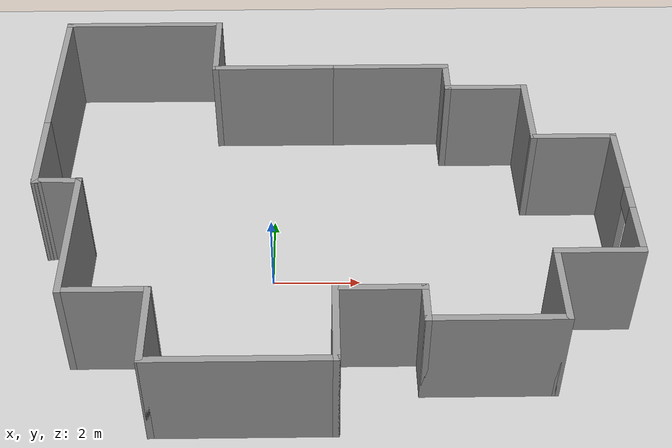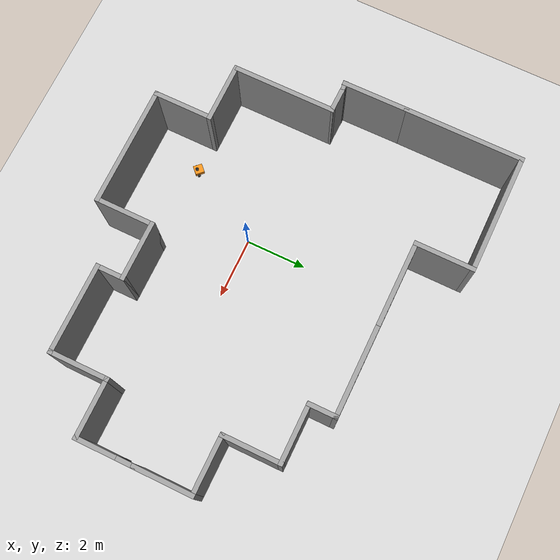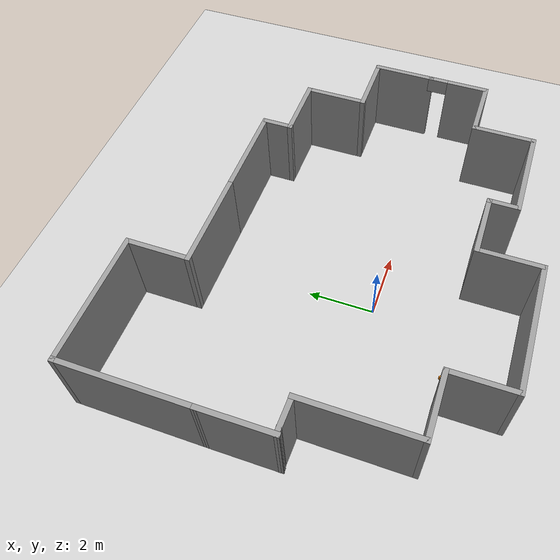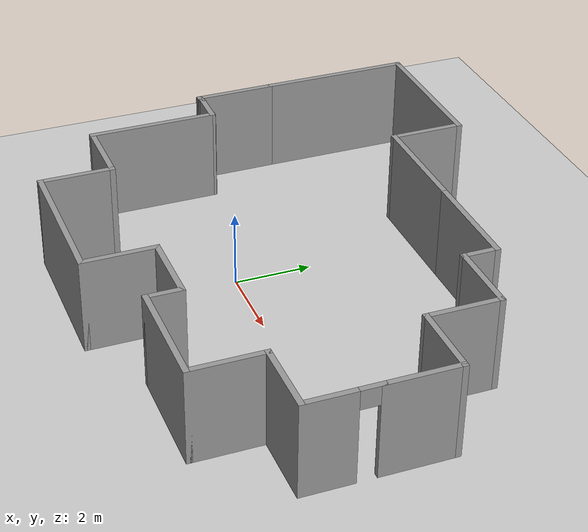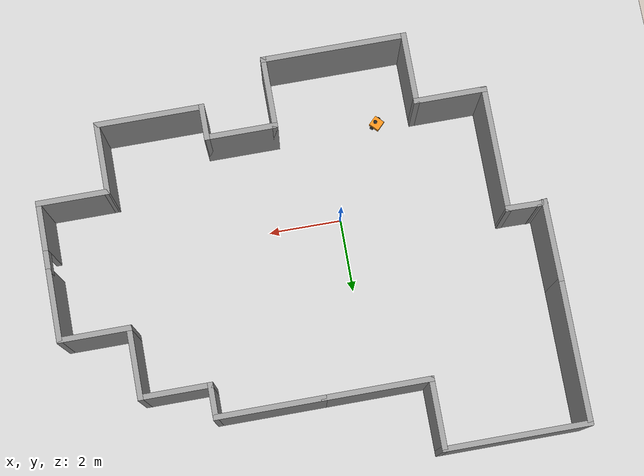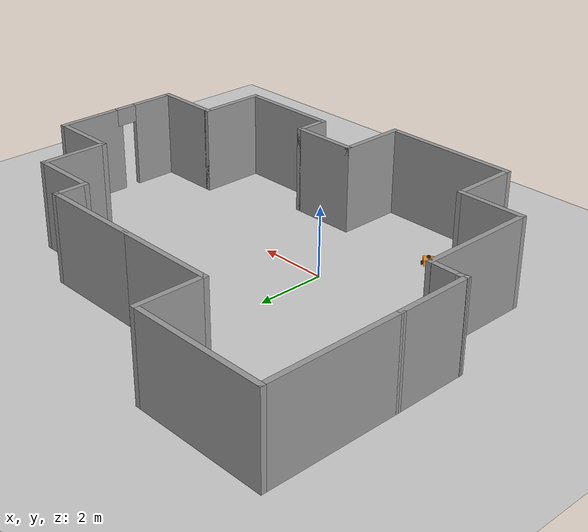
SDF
<sdf version="1.7">
 <world name="default">
  <light name="sun" type="directional">
   <pose>0 0 10 0 -0 0</pose>
   <diffuse>0.8 0.8 0.8 1</diffuse>
   <specular>0.2 0.2 0.2 1</specular>
   <attenuation>
    <range>1000</range>
    <constant>0.9</constant>
    <linear>0.01</linear>
    <quadratic>0.001</quadratic>
   </attenuation>
   <direction>-0.5 0.1 -0.9</direction>
   <spot><inner_angle>0</inner_angle><outer_angle>0</outer_angle><falloff>0</falloff></spot>
  </light>
  <model name="ground_plane">
   <static>1</static>
   <link name="link">
    <collision name="collision">
     <geometry><plane><normal>0 0 1</normal><size>100 100</size></plane></geometry>
     <surface>
      <contact><collide_bitmask>65535</collide_bitmask></contact>
      <friction><ode><mu>100</mu><mu2>50</mu2></ode></friction>
     </surface>
    </collision>
    <visual name="visual">
     <cast_shadows>0</cast_shadows>
     <geometry><plane><normal>0 0 1</normal><size>100 100</size></plane></geometry>
     <material>
      <script><uri>file://media/materials/scripts/gazebo.material</uri><name>Gazebo/Grey</name></script>
     </material>
    </visual>
   </link>
  </model>
  <gravity>0 0 -9.8</gravity>
  <magnetic_field>6e-06 2.3e-05 -4.2e-05</magnetic_field>
  <atmosphere type="adiabatic"/>
  <physics type="ode">
   <max_step_size>0.001</max_step_size>
   <real_time_factor>1</real_time_factor>
   <real_time_update_rate>1000</real_time_update_rate>
  </physics>
  <scene><ambient>0.4 0.4 0.4 1</ambient><background>0.7 0.7 0.7 1</background><shadows>1</shadows></scene>
  <audio><device>default</device></audio>
  <spherical_coordinates>
   <surface_model>EARTH_WGS84</surface_model>
   <latitude_deg>0</latitude_deg>
   <longitude_deg>0</longitude_deg>
   <elevation>0</elevation>
   <heading_deg>0</heading_deg>
  </spherical_coordinates>
  <model name="my_house">
   <pose>1.30477 1.28 0 0 -0 0</pose>
   <link name="Wall_0">
    <collision name="Wall_0_Collision">
     <geometry><box><size>4 0.15 2.5</size></box></geometry>
     <pose>0 0 1.25 0 -0 0</pose>
    </collision>
    <visual name="Wall_0_Visual">
     <pose>0 0 1.25 0 -0 0</pose>
     <geometry><box><size>4 0.15 2.5</size></box></geometry>
     <material>
      <script><uri>file://media/materials/scripts/gazebo.material</uri><name>Gazebo/Grey</name></script>
      <ambient>1 1 1 1</ambient>
     </material>
     <meta><layer>0</layer></meta>
    </visual>
    <pose>-1.84977 -5.55 0 0 -0 0</pose>
   </link>
   <link name="Wall_1">
    <collision name="Wall_1_Collision">
     <geometry><box><size>2 0.15 2.5</size></box></geometry>
     <pose>0 0 1.25 0 -0 0</pose>
    </collision>
    <visual name="Wall_1_Visual">
     <pose>0 0 1.25 0 -0 0</pose>
     <geometry><box><size>2 0.15 2.5</size></box></geometry>
     <material>
      <script><uri>file://media/materials/scripts/gazebo.material</uri><name>Gazebo/Grey</name></script>
      <ambient>1 1 1 1</ambient>
     </material>
     <meta><layer>0</layer></meta>
    </visual>
    <pose>0.075228 -4.625 0 0 -0 1.5708</pose>
   </link>
   <link name="Wall_10">
    <collision name="Wall_10_Collision">
     <geometry><box><size>2 0.15 2.5</size></box></geometry>
     <pose>0 0 1.25 0 -0 0</pose>
    </collision>
    <visual name="Wall_10_Visual">
     <pose>0 0 1.25 0 -0 0</pose>
     <geometry><box><size>2 0.15 2.5</size></box></geometry>
     <material>
      <script><uri>file://media/materials/scripts/gazebo.material</uri><name>Gazebo/Grey</name></script>
      <ambient>1 1 1 1</ambient>
     </material>
     <meta><layer>0</layer></meta>
    </visual>
    <pose>5.70023 1 0 0 -0 3.14159</pose>
   </link>
   <link name="Wall_11">
    <collision name="Wall_11_Collision">
     <geometry><box><size>2 0.15 2.5</size></box></geometry>
     <pose>0 0 1.25 0 -0 0</pose>
    </collision>
    <visual name="Wall_11_Visual">
     <pose>0 0 1.25 0 -0 0</pose>
     <geometry><box><size>2 0.15 2.5</size></box></geometry>
     <material>
      <script><uri>file://media/materials/scripts/gazebo.material</uri><name>Gazebo/Grey</name></script>
      <ambient>1 1 1 1</ambient>
     </material>
     <meta><layer>0</layer></meta>
    </visual>
    <pose>4.77523 1.925 0 0 -0 1.5708</pose>
   </link>
   <link name="Wall_13">
    <collision name="Wall_13_Collision">
     <geometry><box><size>2 0.15 2.5</size></box></geometry>
     <pose>0 0 1.25 0 -0 0</pose>
    </collision>
    <visual name="Wall_13_Visual">
     <pose>0 0 1.25 0 -0 0</pose>
     <geometry><box><size>2 0.15 2.5</size></box></geometry>
     <material>
      <script><uri>file://media/materials/scripts/gazebo.material</uri><name>Gazebo/Grey</name></script>
      <ambient>1 1 1 1</ambient>
     </material>
     <meta><layer>0</layer></meta>
    </visual>
    <pose>3.85023 2.85 0 0 -0 3.14159</pose>
   </link>
   <link name="Wall_14">
    <collision name="Wall_14_Collision">
     <geometry><box><size>1 0.15 2.5</size></box></geometry>
     <pose>0 0 1.25 0 -0 0</pose>
    </collision>
    <visual name="Wall_14_Visual">
     <pose>0 0 1.25 0 -0 0</pose>
     <geometry><box><size>1 0.15 2.5</size></box></geometry>
     <material>
      <script><uri>file://media/materials/scripts/gazebo.material</uri><name>Gazebo/Grey</name></script>
      <ambient>1 1 1 1</ambient>
     </material>
     <meta><layer>0</layer></meta>
    </visual>
    <pose>2.92523 3.275 0 0 -0 1.5708</pose>
   </link>
   <link name="Wall_15">
    <collision name="Wall_15_Collision">
     <geometry><box><size>3 0.15 2.5</size></box></geometry>
     <pose>0 0 1.25 0 -0 0</pose>
    </collision>
    <visual name="Wall_15_Visual">
     <pose>0 0 1.25 0 -0 0</pose>
     <geometry><box><size>3 0.15 2.5</size></box></geometry>
     <material>
      <script><uri>file://media/materials/scripts/gazebo.material</uri><name>Gazebo/Grey</name></script>
      <ambient>1 1 1 1</ambient>
     </material>
     <meta><layer>0</layer></meta>
    </visual>
    <pose>1.50023 3.7 0 0 -0 3.14159</pose>
   </link>
   <link name="Wall_16">
    <collision name="Wall_16_Collision">
     <geometry><box><size>3 0.15 2.5</size></box></geometry>
     <pose>0 0 1.25 0 -0 0</pose>
    </collision>
    <visual name="Wall_16_Visual">
     <pose>0 0 1.25 0 -0 0</pose>
     <geometry><box><size>3 0.15 2.5</size></box></geometry>
     <material>
      <script><uri>file://media/materials/scripts/gazebo.material</uri><name>Gazebo/Grey</name></script>
      <ambient>1 1 1 1</ambient>
     </material>
     <meta><layer>0</layer></meta>
    </visual>
    <pose>-1.34977 3.7 0 0 -0 3.14159</pose>
   </link>
   <link name="Wall_18">
    <collision name="Wall_18_Collision">
     <geometry><box><size>2 0.15 2.5</size></box></geometry>
     <pose>0 0 1.25 0 -0 0</pose>
    </collision>
    <visual name="Wall_18_Visual">
     <pose>0 0 1.25 0 -0 0</pose>
     <geometry><box><size>2 0.15 2.5</size></box></geometry>
     <material>
      <script><uri>file://media/materials/scripts/gazebo.material</uri><name>Gazebo/Grey</name></script>
      <ambient>1 1 1 1</ambient>
     </material>
     <meta><layer>0</layer></meta>
    </visual>
    <pose>-2.77477 4.625 0 0 -0 1.5708</pose>
   </link>
   <link name="Wall_19">
    <collision name="Wall_19_Collision">
     <geometry><box><size>4 0.15 2.5</size></box></geometry>
     <pose>0 0 1.25 0 -0 0</pose>
    </collision>
    <visual name="Wall_19_Visual">
     <pose>0 0 1.25 0 -0 0</pose>
     <geometry><box><size>4 0.15 2.5</size></box></geometry>
     <material>
      <script><uri>file://media/materials/scripts/gazebo.material</uri><name>Gazebo/Grey</name></script>
      <ambient>1 1 1 1</ambient>
     </material>
     <meta><layer>0</layer></meta>
    </visual>
    <pose>-4.69977 5.55 0 0 -0 3.14159</pose>
   </link>
   <link name="Wall_2">
    <collision name="Wall_2_Collision">
     <geometry><box><size>2 0.15 2.5</size></box></geometry>
     <pose>0 0 1.25 0 -0 0</pose>
    </collision>
    <visual name="Wall_2_Visual">
     <pose>0 0 1.25 0 -0 0</pose>
     <geometry><box><size>2 0.15 2.5</size></box></geometry>
     <material>
      <script><uri>file://media/materials/scripts/gazebo.material</uri><name>Gazebo/Grey</name></script>
      <ambient>1 1 1 1</ambient>
     </material>
     <meta><layer>0</layer></meta>
    </visual>
    <pose>1.00023 -3.7 0 0 -0 0</pose>
   </link>
   <link name="Wall_20">
    <collision name="Wall_20_Collision">
     <geometry><box><size>4 0.15 2.5</size></box></geometry>
     <pose>0 0 1.25 0 -0 0</pose>
    </collision>
    <visual name="Wall_20_Visual">
     <pose>0 0 1.25 0 -0 0</pose>
     <geometry><box><size>4 0.15 2.5</size></box></geometry>
     <material>
      <script><uri>file://media/materials/scripts/gazebo.material</uri><name>Gazebo/Grey</name></script>
      <ambient>1 1 1 1</ambient>
     </material>
     <meta><layer>0</layer></meta>
    </visual>
    <pose>-6.62477 3.625 0 0 -0 -1.5708</pose>
   </link>
   <link name="Wall_22">
    <collision name="Wall_22_Collision">
     <geometry><box><size>2 0.15 2.5</size></box></geometry>
     <pose>0 0 1.25 0 -0 0</pose>
    </collision>
    <visual name="Wall_22_Visual">
     <pose>0 0 1.25 0 -0 0</pose>
     <geometry><box><size>2 0.15 2.5</size></box></geometry>
     <material>
      <script><uri>file://media/materials/scripts/gazebo.material</uri><name>Gazebo/Grey</name></script>
      <ambient>1 1 1 1</ambient>
     </material>
     <meta><layer>0</layer></meta>
    </visual>
    <pose>-3.77477 -4.625 0 0 -0 1.5708</pose>
   </link>
   <link name="Wall_23">
    <collision name="Wall_23_Collision">
     <geometry><box><size>2 0.15 2.5</size></box></geometry>
     <pose>0 0 1.25 0 -0 0</pose>
    </collision>
    <visual name="Wall_23_Visual">
     <pose>0 0 1.25 0 -0 0</pose>
     <geometry><box><size>2 0.15 2.5</size></box></geometry>
     <material>
      <script><uri>file://media/materials/scripts/gazebo.material</uri><name>Gazebo/Grey</name></script>
      <ambient>1 1 1 1</ambient>
     </material>
     <meta><layer>0</layer></meta>
    </visual>
    <pose>-4.69977 -3.7 0 0 -0 3.14159</pose>
   </link>
   <link name="Wall_24">
    <collision name="Wall_24_Collision">
     <geometry><box><size>3.4711 0.15 2.5</size></box></geometry>
     <pose>0 0 1.25 0 -0 0</pose>
    </collision>
    <visual name="Wall_24_Visual">
     <pose>0 0 1.25 0 -0 0</pose>
     <geometry><box><size>3.4711 0.15 2.5</size></box></geometry>
     <material>
      <script><uri>file://media/materials/scripts/gazebo.material</uri><name>Gazebo/Grey</name></script>
      <ambient>1 1 1 1</ambient>
     </material>
     <meta><layer>0</layer></meta>
    </visual>
    <pose>-5.62477 -2.03945 0 0 -0 1.5708</pose>
   </link>
   <link name="Wall_25">
    <collision name="Wall_25_Collision">
     <geometry><box><size>0.987433 0.15 2.5</size></box></geometry>
     <pose>0 0 1.25 0 -0 0</pose>
    </collision>
    <visual name="Wall_25_Visual">
     <pose>0 0 1.25 0 -0 0</pose>
     <geometry><box><size>0.987433 0.15 2.5</size></box></geometry>
     <material>
      <script><uri>file://media/materials/scripts/gazebo.material</uri><name>Gazebo/Grey</name></script>
      <ambient>1 1 1 1</ambient>
     </material>
     <meta><layer>0</layer></meta>
    </visual>
    <pose>-6.04341 -0.380268 0 0 -0 3.12235</pose>
   </link>
   <link name="Wall_28">
    <collision name="Wall_28_Collision">
     <geometry><box><size>2.244 0.15 2.5</size></box></geometry>
     <pose>0 0 1.25 0 -0 0</pose>
    </collision>
    <visual name="Wall_28_Visual">
     <pose>0 0 1.25 0 -0 0</pose>
     <geometry><box><size>2.244 0.15 2.5</size></box></geometry>
     <material>
      <script><uri>file://media/materials/scripts/gazebo.material</uri><name>Gazebo/Grey</name></script>
      <ambient>1 1 1 1</ambient>
     </material>
     <meta><layer>0</layer></meta>
    </visual>
    <pose>-6.61841 0.653348 0 0 -0 -1.56472</pose>
   </link>
   <link name="Wall_29">
    <collision name="Wall_29_Collision">
     <geometry><box><size>0.301476 0.15 2.5</size></box></geometry>
     <pose>0 0 1.25 0 -0 0</pose>
    </collision>
    <visual name="Wall_29_Visual">
     <pose>0 0 1.25 0 -0 0</pose>
     <geometry><box><size>0.301476 0.15 2.5</size></box></geometry>
     <material>
      <script><uri>file://media/materials/scripts/gazebo.material</uri><name>Gazebo/Grey</name></script>
      <ambient>1 1 1 1</ambient>
     </material>
     <meta><layer>0</layer></meta>
    </visual>
    <pose>-6.53772 -0.382757 0 0 -0 0.13972</pose>
   </link>
   <link name="Wall_3">
    <collision name="Wall_3_Collision">
     <geometry><box><size>1 0.15 2.5</size></box></geometry>
     <pose>0 0 1.25 0 -0 0</pose>
    </collision>
    <visual name="Wall_3_Visual">
     <pose>0 0 1.25 0 -0 0</pose>
     <geometry><box><size>1 0.15 2.5</size></box></geometry>
     <material>
      <script><uri>file://media/materials/scripts/gazebo.material</uri><name>Gazebo/Grey</name></script>
      <ambient>1 1 1 1</ambient>
     </material>
     <meta><layer>0</layer></meta>
    </visual>
    <pose>1.92523 -4.125 0 0 -0 -1.5708</pose>
   </link>
   <link name="Wall_4">
    <collision name="Wall_4_Collision">
     <geometry><box><size>3 0.15 2.5</size></box></geometry>
     <pose>0 0 1.25 0 -0 0</pose>
    </collision>
    <visual name="Wall_4_Visual">
     <pose>0 0 1.25 0 -0 0</pose>
     <geometry><box><size>3 0.15 2.5</size></box></geometry>
     <material>
      <script><uri>file://media/materials/scripts/gazebo.material</uri><name>Gazebo/Grey</name></script>
      <ambient>1 1 1 1</ambient>
     </material>
     <meta><layer>0</layer></meta>
    </visual>
    <pose>3.35023 -4.55 0 0 -0 0</pose>
   </link>
   <link name="Wall_5">
    <collision name="Wall_5_Collision">
     <geometry><box><size>2 0.15 2.5</size></box></geometry>
     <pose>0 0 1.25 0 -0 0</pose>
    </collision>
    <visual name="Wall_5_Visual">
     <pose>0 0 1.25 0 -0 0</pose>
     <geometry><box><size>2 0.15 2.5</size></box></geometry>
     <material>
      <script><uri>file://media/materials/scripts/gazebo.material</uri><name>Gazebo/Grey</name></script>
      <ambient>1 1 1 1</ambient>
     </material>
     <meta><layer>0</layer></meta>
    </visual>
    <pose>4.77523 -3.625 0 0 -0 1.5708</pose>
   </link>
   <link name="Wall_6">
    <collision name="Wall_6_Collision">
     <geometry><box><size>2 0.15 2.5</size></box></geometry>
     <pose>0 0 1.25 0 -0 0</pose>
    </collision>
    <visual name="Wall_6_Visual">
     <pose>0 0 1.25 0 -0 0</pose>
     <geometry><box><size>2 0.15 2.5</size></box></geometry>
     <material>
      <script><uri>file://media/materials/scripts/gazebo.material</uri><name>Gazebo/Grey</name></script>
      <ambient>1 1 1 1</ambient>
     </material>
     <meta><layer>0</layer></meta>
    </visual>
    <pose>5.70023 -2.7 0 0 -0 0</pose>
   </link>
   <link name="Wall_8">
    <pose>6.62523 -1.775 0 0 -0 1.5708</pose>
    <visual name="Wall_8_Visual_0">
     <pose>-0.318833 0 1.25 0 -0 0</pose>
     <geometry><box><size>1.36233 0.15 2.5</size></box></geometry>
     <material>
      <script><uri>file://media/materials/scripts/gazebo.material</uri><name>Gazebo/Grey</name></script>
      <ambient>1 1 1 1</ambient>
     </material>
     <meta><layer>0</layer></meta>
    </visual>
    <collision name="Wall_8_Collision_0">
     <geometry><box><size>1.36233 0.15 2.5</size></box></geometry>
     <pose>-0.318833 0 1.25 0 -0 0</pose>
    </collision>
    <visual name="Wall_8_Visual_1">
     <pose>0.681167 0 2.25 0 -0 0</pose>
     <geometry><box><size>0.637666 0.15 0.5</size></box></geometry>
     <material>
      <script><uri>file://media/materials/scripts/gazebo.material</uri><name>Gazebo/Grey</name></script>
      <ambient>1 1 1 1</ambient>
     </material>
     <meta><layer>0</layer></meta>
    </visual>
    <collision name="Wall_8_Collision_1">
     <geometry><box><size>0.637666 0.15 0.5</size></box></geometry>
     <pose>0.681167 0 2.25 0 -0 0</pose>
    </collision>
   </link>
   <link name="Wall_9">
    <collision name="Wall_9_Collision">
     <geometry><box><size>2 0.15 2.5</size></box></geometry>
     <pose>0 0 1.25 0 -0 0</pose>
    </collision>
    <visual name="Wall_9_Visual">
     <pose>0 0 1.25 0 -0 0</pose>
     <geometry><box><size>2 0.15 2.5</size></box></geometry>
     <material>
      <script><uri>file://media/materials/scripts/gazebo.material</uri><name>Gazebo/Grey</name></script>
      <ambient>1 1 1 1</ambient>
     </material>
     <meta><layer>0</layer></meta>
    </visual>
    <pose>6.62523 0.075 0 0 -0 1.5708</pose>
   </link>
   <static>1</static>
  </model>
  <model name="robot">
   <link name="base_link">
    <inertial>
     <pose>0.055714 0 0.025 0 -0 0</pose>
     <mass>0.7</mass>
     <inertia>
      <ixx>0.00748833</ixx>
      <ixy>0</ixy>
      <ixz>0.000975</ixz>
      <iyy>0.00852548</iyy>
      <iyz>0</iyz>
      <izz>0.00876214</izz>
     </inertia>
    </inertial>
    <collision name="base_link_fixed_joint_lump__chassis_collision">
     <pose>0.05 0 0.075 0 -0 0</pose>
     <geometry><box><size>0.3 0.3 0.15</size></box></geometry>
    </collision>
    <collision name="base_link_fixed_joint_lump__caster_wheel_collision_1">
     <pose>0.14 0 0 0 -0 0</pose>
     <geometry><sphere><radius>0.05</radius></sphere></geometry>
     <surface><friction><ode><mu>0.001</mu><mu2>0.001</mu2></ode></friction></surface>
    </collision>
    <collision name="base_link_fixed_joint_lump__laser_frame_collision_2">
     <pose>0 0 0.175 0 -0 0</pose>
     <geometry><cylinder><length>0.04</length><radius>0.05</radius></cylinder></geometry>
    </collision>
    <visual name="base_link_fixed_joint_lump__chassis_visual">
     <pose>0.05 0 0.075 0 -0 0</pose>
     <geometry><box><size>0.3 0.3 0.15</size></box></geometry>
     <material>
      <script><name>Gazebo/Orange</name><uri>file://media/materials/scripts/gazebo.material</uri></script>
     </material>
    </visual>
    <visual name="base_link_fixed_joint_lump__caster_wheel_visual_1">
     <pose>0.14 0 0 0 -0 0</pose>
     <geometry><sphere><radius>0.05</radius></sphere></geometry>
     <material>
      <script><name>Gazebo/Black</name><uri>file://media/materials/scripts/gazebo.material</uri></script>
     </material>
    </visual>
    <visual name="base_link_fixed_joint_lump__laser_frame_visual_2">
     <pose>0 0 0.175 0 -0 0</pose>
     <geometry><cylinder><length>0.04</length><radius>0.05</radius></cylinder></geometry>
     <material>
      <script><name>Gazebo/Black</name><uri>file://media/materials/scripts/gazebo.material</uri></script>
     </material>
    </visual>
    <sensor name="laser" type="ray">
     <visualize>1</visualize>
     <update_rate>10</update_rate>
     <ray>
      <scan>
       <horizontal>
        <samples>360</samples>
        <min_angle>-3.14</min_angle>
        <max_angle>3.14</max_angle>
        <resolution>1</resolution>
       </horizontal>
       <vertical><samples>1</samples><min_angle>0</min_angle><max_angle>0</max_angle></vertical>
      </scan>
      <range><min>0.3</min><max>12</max></range>
     </ray>
     <plugin name="laser_controller" filename="libgazebo_ros_ray_sensor.so">
      <ros><argument>~/out:=scan</argument></ros>
      <output_type>sensor_msgs/LaserScan</output_type>
      <frame_name>laser_frame</frame_name>
     </plugin>
     <pose>0 0 0.175 0 -0 0</pose>
    </sensor>
   </link>
   <joint name="left_wheel_joint" type="revolute">
    <pose relative_to="base_link">0 0.175 0 -1.5708 0 0</pose>
    <parent>base_link</parent>
    <child>left_wheel</child>
    <axis>
     <xyz>0 0 1</xyz>
     <limit><lower>-1e+16</lower><upper>1e+16</upper></limit>
     <dynamics><spring_reference>0</spring_reference><spring_stiffness>0</spring_stiffness></dynamics>
    </axis>
   </joint>
   <link name="left_wheel">
    <pose relative_to="left_wheel_joint">0 0 0 0 -0 0</pose>
    <inertial>
     <mass>0.1</mass>
     <inertia>
      <ixx>7.58333e-05</ixx>
      <ixy>0</ixy>
      <ixz>0</ixz>
      <iyy>7.58333e-05</iyy>
      <iyz>0</iyz>
      <izz>0.000125</izz>
     </inertia>
    </inertial>
    <collision name="left_wheel_collision">
     <geometry><cylinder><length>0.04</length><radius>0.05</radius></cylinder></geometry>
    </collision>
    <visual name="left_wheel_visual">
     <geometry><cylinder><length>0.04</length><radius>0.05</radius></cylinder></geometry>
     <material>
      <script><name>Gazebo/Black</name><uri>file://media/materials/scripts/gazebo.material</uri></script>
     </material>
    </visual>
   </link>
   <joint name="right_wheel_joint" type="revolute">
    <pose relative_to="base_link">0 -0.175 0 1.5708 -0 0</pose>
    <parent>base_link</parent>
    <child>right_wheel</child>
    <axis>
     <xyz>0 0 -1</xyz>
     <limit><lower>-1e+16</lower><upper>1e+16</upper></limit>
     <dynamics><spring_reference>0</spring_reference><spring_stiffness>0</spring_stiffness></dynamics>
    </axis>
   </joint>
   <link name="right_wheel">
    <pose relative_to="right_wheel_joint">0 0 0 0 -0 0</pose>
    <inertial>
     <mass>0.1</mass>
     <inertia>
      <ixx>7.58333e-05</ixx>
      <ixy>0</ixy>
      <ixz>0</ixz>
      <iyy>7.58333e-05</iyy>
      <iyz>0</iyz>
      <izz>0.000125</izz>
     </inertia>
    </inertial>
    <collision name="right_wheel_collision">
     <geometry><cylinder><length>0.04</length><radius>0.05</radius></cylinder></geometry>
    </collision>
    <visual name="right_wheel_visual">
     <geometry><cylinder><length>0.04</length><radius>0.05</radius></cylinder></geometry>
     <material>
      <script><name>Gazebo/Black</name><uri>file://media/materials/scripts/gazebo.material</uri></script>
     </material>
    </visual>
   </link>
   <static>0</static>
   <plugin name="diff_drive" filename="libgazebo_ros_diff_drive.so">
    <left_joint>left_wheel_joint</left_joint>
    <right_joint>right_wheel_joint</right_joint>
    <wheel_separation>0.35</wheel_separation>
    <wheel_diameter>0.1</wheel_diameter>
    <max_wheel_torque>200</max_wheel_torque>
    <max_wheel_acceleration>10.0</max_wheel_acceleration>
    <odometry_frame>odom</odometry_frame>
    <robot_base_frame>base_link</robot_base_frame>
    <publish_odom>1</publish_odom>
    <publish_odom_tf>1</publish_odom_tf>
    <publish_wheel_tf>1</publish_wheel_tf>
   </plugin>
   <pose>-1.47033 -2.59053 0.05 0 1e-06 2.35507</pose>
  </model>
 </world>
</sdf>
